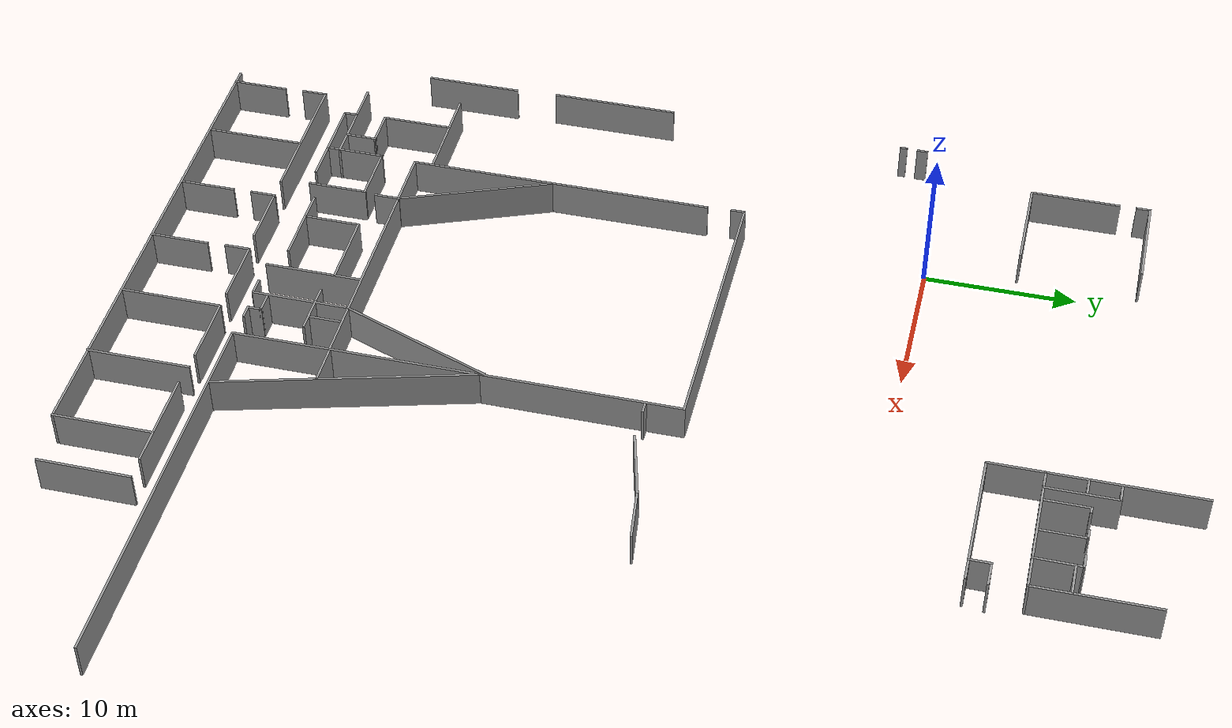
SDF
<sdf version="1.6">
 <model name="ensta_portes">
  <pose>1.28297 8.11006 0 0 -0 0</pose>
  <link name="Wall_1000">
   <collision name="Wall_1000_Collision">
    <geometry><box><size>8.5 0.15 2.5</size></box></geometry>
    <pose>0 0 1.25 0 -0 0</pose>
   </collision>
   <visual name="Wall_1000_Visual">
    <pose>0 0 1.25 0 -0 0</pose>
    <geometry><box><size>8.5 0.15 2.5</size></box></geometry>
    <material>
     <script><uri>file://media/materials/scripts/gazebo.material</uri><name>Gazebo/Grey</name></script>
     <ambient>1 1 1 1</ambient>
    </material>
    <meta><layer>0</layer></meta>
   </visual>
   <pose>-11.467 -31.6621 0 0 -0 -1.5708</pose>
  </link>
  <link name="Wall_1009">
   <collision name="Wall_1009_Collision">
    <geometry><box><size>6.39885 0.15 2.5</size></box></geometry>
    <pose>0 0 1.25 0 -0 0</pose>
   </collision>
   <visual name="Wall_1009_Visual">
    <pose>0 0 1.25 0 -0 0</pose>
    <geometry><box><size>6.39885 0.15 2.5</size></box></geometry>
    <material>
     <script><uri>file://media/materials/scripts/gazebo.material</uri><name>Gazebo/Grey</name></script>
     <ambient>1 1 1 1</ambient>
    </material>
    <meta><layer>0</layer></meta>
   </visual>
   <pose>-11.3009 -41.825 0 0 -0 -1.56909</pose>
  </link>
  <link name="Wall_1011">
   <collision name="Wall_1011_Collision">
    <geometry><box><size>6.5 0.15 2.5</size></box></geometry>
    <pose>0 0 1.25 0 -0 0</pose>
   </collision>
   <visual name="Wall_1011_Visual">
    <pose>0 0 1.25 0 -0 0</pose>
    <geometry><box><size>6.5 0.15 2.5</size></box></geometry>
    <material>
     <script><uri>file://media/materials/scripts/gazebo.material</uri><name>Gazebo/Grey</name></script>
     <ambient>1 1 1 1</ambient>
    </material>
    <meta><layer>0</layer></meta>
   </visual>
   <pose>-5.45647 -48.8577 0 0 -0 0</pose>
  </link>
  <link name="Wall_1013">
   <collision name="Wall_1013_Collision">
    <geometry><box><size>6.75 0.15 2.5</size></box></geometry>
    <pose>0 0 1.25 0 -0 0</pose>
   </collision>
   <visual name="Wall_1013_Visual">
    <pose>0 0 1.25 0 -0 0</pose>
    <geometry><box><size>6.75 0.15 2.5</size></box></geometry>
    <material>
     <script><uri>file://media/materials/scripts/gazebo.material</uri><name>Gazebo/Grey</name></script>
     <ambient>1 1 1 1</ambient>
    </material>
    <meta><layer>0</layer></meta>
   </visual>
   <pose>-5.63393 -42.2036 0 0 -0 0</pose>
  </link>
  <link name="Wall_1015">
   <collision name="Wall_1015_Collision">
    <geometry><box><size>4.75 0.15 2.5</size></box></geometry>
    <pose>0 0 1.25 0 -0 0</pose>
   </collision>
   <visual name="Wall_1015_Visual">
    <pose>0 0 1.25 0 -0 0</pose>
    <geometry><box><size>4.75 0.15 2.5</size></box></geometry>
    <material>
     <script><uri>file://media/materials/scripts/gazebo.material</uri><name>Gazebo/Grey</name></script>
     <ambient>1 1 1 1</ambient>
    </material>
    <meta><layer>0</layer></meta>
   </visual>
   <pose>-6.2723 -44.5419 0 0 -0 -1.5708</pose>
  </link>
  <link name="Wall_1016">
   <collision name="Wall_1016_Collision">
    <geometry><box><size>2.5 0.15 2.5</size></box></geometry>
    <pose>0 0 1.25 0 -0 0</pose>
   </collision>
   <visual name="Wall_1016_Visual">
    <pose>0 0 1.25 0 -0 0</pose>
    <geometry><box><size>2.5 0.15 2.5</size></box></geometry>
    <material>
     <script><uri>file://media/materials/scripts/gazebo.material</uri><name>Gazebo/Grey</name></script>
     <ambient>1 1 1 1</ambient>
    </material>
    <meta><layer>0</layer></meta>
   </visual>
   <pose>-5.0973 -46.8419 0 0 -0 0</pose>
  </link>
  <link name="Wall_1017">
   <collision name="Wall_1017_Collision">
    <geometry><box><size>2.12495 0.15 2.5</size></box></geometry>
    <pose>0 0 1.25 0 -0 0</pose>
   </collision>
   <visual name="Wall_1017_Visual">
    <pose>0 0 1.25 0 -0 0</pose>
    <geometry><box><size>2.12495 0.15 2.5</size></box></geometry>
    <material>
     <script><uri>file://media/materials/scripts/gazebo.material</uri><name>Gazebo/Grey</name></script>
     <ambient>1 1 1 1</ambient>
    </material>
    <meta><layer>0</layer></meta>
   </visual>
   <pose>-3.92825 -47.8293 0 0 -0 -1.57682</pose>
  </link>
  <link name="Wall_1019">
   <collision name="Wall_1019_Collision">
    <geometry><box><size>4 0.15 2.5</size></box></geometry>
    <pose>0 0 1.25 0 -0 0</pose>
   </collision>
   <visual name="Wall_1019_Visual">
    <pose>0 0 1.25 0 -0 0</pose>
    <geometry><box><size>4 0.15 2.5</size></box></geometry>
    <material>
     <script><uri>file://media/materials/scripts/gazebo.material</uri><name>Gazebo/Grey</name></script>
     <ambient>1 1 1 1</ambient>
    </material>
    <meta><layer>0</layer></meta>
   </visual>
   <pose>-2.29279 -47.788 0 0 -0 -1.5708</pose>
  </link>
  <link name="Wall_1020">
   <collision name="Wall_1020_Collision">
    <geometry><box><size>4 0.15 2.5</size></box></geometry>
    <pose>0 0 1.25 0 -0 0</pose>
   </collision>
   <visual name="Wall_1020_Visual">
    <pose>0 0 1.25 0 -0 0</pose>
    <geometry><box><size>4 0.15 2.5</size></box></geometry>
    <material>
     <script><uri>file://media/materials/scripts/gazebo.material</uri><name>Gazebo/Grey</name></script>
     <ambient>1 1 1 1</ambient>
    </material>
    <meta><layer>0</layer></meta>
   </visual>
   <pose>-4.21779 -49.713 0 0 -0 3.14159</pose>
  </link>
  <link name="Wall_1021">
   <collision name="Wall_1021_Collision">
    <geometry><box><size>1 0.15 2.5</size></box></geometry>
    <pose>0 0 1.25 0 -0 0</pose>
   </collision>
   <visual name="Wall_1021_Visual">
    <pose>0 0 1.25 0 -0 0</pose>
    <geometry><box><size>1 0.15 2.5</size></box></geometry>
    <material>
     <script><uri>file://media/materials/scripts/gazebo.material</uri><name>Gazebo/Grey</name></script>
     <ambient>1 1 1 1</ambient>
    </material>
    <meta><layer>0</layer></meta>
   </visual>
   <pose>-6.14279 -49.288 0 0 -0 1.5708</pose>
  </link>
  <link name="Wall_1023">
   <collision name="Wall_1023_Collision">
    <geometry><box><size>4 0.15 2.5</size></box></geometry>
    <pose>0 0 1.25 0 -0 0</pose>
   </collision>
   <visual name="Wall_1023_Visual">
    <pose>0 0 1.25 0 -0 0</pose>
    <geometry><box><size>4 0.15 2.5</size></box></geometry>
    <material>
     <script><uri>file://media/materials/scripts/gazebo.material</uri><name>Gazebo/Grey</name></script>
     <ambient>1 1 1 1</ambient>
    </material>
    <meta><layer>0</layer></meta>
   </visual>
   <pose>-0.367791 -45.863 0 0 -0 0</pose>
  </link>
  <link name="Wall_1024">
   <collision name="Wall_1024_Collision">
    <geometry><box><size>4 0.15 2.5</size></box></geometry>
    <pose>0 0 1.25 0 -0 0</pose>
   </collision>
   <visual name="Wall_1024_Visual">
    <pose>0 0 1.25 0 -0 0</pose>
    <geometry><box><size>4 0.15 2.5</size></box></geometry>
    <material>
     <script><uri>file://media/materials/scripts/gazebo.material</uri><name>Gazebo/Grey</name></script>
     <ambient>1 1 1 1</ambient>
    </material>
    <meta><layer>0</layer></meta>
   </visual>
   <pose>1.55721 -47.788 0 0 -0 -1.5708</pose>
  </link>
  <link name="Wall_1026">
   <collision name="Wall_1026_Collision">
    <geometry><box><size>2.75 0.15 2.5</size></box></geometry>
    <pose>0 0 1.25 0 -0 0</pose>
   </collision>
   <visual name="Wall_1026_Visual">
    <pose>0 0 1.25 0 -0 0</pose>
    <geometry><box><size>2.75 0.15 2.5</size></box></geometry>
    <material>
     <script><uri>file://media/materials/scripts/gazebo.material</uri><name>Gazebo/Grey</name></script>
     <ambient>1 1 1 1</ambient>
    </material>
    <meta><layer>0</layer></meta>
   </visual>
   <pose>-0.992791 -49.713 0 0 -0 0</pose>
  </link>
  <link name="Wall_1028">
   <collision name="Wall_1028_Collision">
    <geometry><box><size>20.5 0.15 2.5</size></box></geometry>
    <pose>0 0 1.25 0 -0 0</pose>
   </collision>
   <visual name="Wall_1028_Visual">
    <pose>0 0 1.25 0 -0 0</pose>
    <geometry><box><size>20.5 0.15 2.5</size></box></geometry>
    <material>
     <script><uri>file://media/materials/scripts/gazebo.material</uri><name>Gazebo/Grey</name></script>
     <ambient>1 1 1 1</ambient>
    </material>
    <meta><layer>0</layer></meta>
   </visual>
   <pose>-2.18392 -33.2842 0 0 -0 -1.5708</pose>
  </link>
  <link name="Wall_1030">
   <collision name="Wall_1030_Collision">
    <geometry><box><size>18.75 0.15 2.5</size></box></geometry>
    <pose>0 0 1.25 0 -0 0</pose>
   </collision>
   <visual name="Wall_1030_Visual">
    <pose>0 0 1.25 0 -0 0</pose>
    <geometry><box><size>18.75 0.15 2.5</size></box></geometry>
    <material>
     <script><uri>file://media/materials/scripts/gazebo.material</uri><name>Gazebo/Grey</name></script>
     <ambient>1 1 1 1</ambient>
    </material>
    <meta><layer>0</layer></meta>
   </visual>
   <pose>7.11608 -43.4592 0 0 -0 0</pose>
  </link>
  <link name="Wall_1032">
   <collision name="Wall_1032_Collision">
    <geometry><box><size>1 0.15 2.5</size></box></geometry>
    <pose>0 0 1.25 0 -0 0</pose>
   </collision>
   <visual name="Wall_1032_Visual">
    <pose>0 0 1.25 0 -0 0</pose>
    <geometry><box><size>1 0.15 2.5</size></box></geometry>
    <material>
     <script><uri>file://media/materials/scripts/gazebo.material</uri><name>Gazebo/Grey</name></script>
     <ambient>1 1 1 1</ambient>
    </material>
    <meta><layer>0</layer></meta>
   </visual>
   <pose>-2.29047 -20.9877 0 0 -0 1.5708</pose>
  </link>
  <link name="Wall_1033">
   <collision name="Wall_1033_Collision">
    <geometry><box><size>19 0.15 2.5</size></box></geometry>
    <pose>0 0 1.25 0 -0 0</pose>
   </collision>
   <visual name="Wall_1033_Visual">
    <pose>0 0 1.25 0 -0 0</pose>
    <geometry><box><size>19 0.15 2.5</size></box></geometry>
    <material>
     <script><uri>file://media/materials/scripts/gazebo.material</uri><name>Gazebo/Grey</name></script>
     <ambient>1 1 1 1</ambient>
    </material>
    <meta><layer>0</layer></meta>
   </visual>
   <pose>7.13453 -20.5627 0 0 -0 0</pose>
  </link>
  <link name="Wall_1035">
   <collision name="Wall_1035_Collision">
    <geometry><box><size>29.5 0.15 2.5</size></box></geometry>
    <pose>0 0 1.25 0 -0 0</pose>
   </collision>
   <visual name="Wall_1035_Visual">
    <pose>0 0 1.25 0 -0 0</pose>
    <geometry><box><size>29.5 0.15 2.5</size></box></geometry>
    <material>
     <script><uri>file://media/materials/scripts/gazebo.material</uri><name>Gazebo/Grey</name></script>
     <ambient>1 1 1 1</ambient>
    </material>
    <meta><layer>0</layer></meta>
   </visual>
   <pose>16.5595 -35.2377 0 0 -0 -1.5708</pose>
  </link>
  <link name="Wall_1041">
   <collision name="Wall_1041_Collision">
    <geometry><box><size>1.75 0.15 2.5</size></box></geometry>
    <pose>0 0 1.25 0 -0 0</pose>
   </collision>
   <visual name="Wall_1041_Visual">
    <pose>0 0 1.25 0 -0 0</pose>
    <geometry><box><size>1.75 0.15 2.5</size></box></geometry>
    <material>
     <script><uri>file://media/materials/scripts/gazebo.material</uri><name>Gazebo/Grey</name></script>
     <ambient>1 1 1 1</ambient>
    </material>
    <meta><layer>0</layer></meta>
   </visual>
   <pose>1.6944 -44.2524 0 0 -0 -1.5708</pose>
  </link>
  <link name="Wall_1043">
   <collision name="Wall_1043_Collision">
    <geometry><box><size>5.5 0.15 2.5</size></box></geometry>
    <pose>0 0 1.25 0 -0 0</pose>
   </collision>
   <visual name="Wall_1043_Visual">
    <pose>0 0 1.25 0 -0 0</pose>
    <geometry><box><size>5.5 0.15 2.5</size></box></geometry>
    <material>
     <script><uri>file://media/materials/scripts/gazebo.material</uri><name>Gazebo/Grey</name></script>
     <ambient>1 1 1 1</ambient>
    </material>
    <meta><layer>0</layer></meta>
   </visual>
   <pose>5.65013 -48.9641 0 0 -0 0</pose>
  </link>
  <link name="Wall_1045">
   <collision name="Wall_1045_Collision">
    <geometry><box><size>3.75 0.15 2.5</size></box></geometry>
    <pose>0 0 1.25 0 -0 0</pose>
   </collision>
   <visual name="Wall_1045_Visual">
    <pose>0 0 1.25 0 -0 0</pose>
    <geometry><box><size>3.75 0.15 2.5</size></box></geometry>
    <material>
     <script><uri>file://media/materials/scripts/gazebo.material</uri><name>Gazebo/Grey</name></script>
     <ambient>1 1 1 1</ambient>
    </material>
    <meta><layer>0</layer></meta>
   </visual>
   <pose>4.85048 -47.0727 0 0 -0 1.5708</pose>
  </link>
  <link name="Wall_1046">
   <collision name="Wall_1046_Collision">
    <geometry><box><size>5.25 0.15 2.5</size></box></geometry>
    <pose>0 0 1.25 0 -0 0</pose>
   </collision>
   <visual name="Wall_1046_Visual">
    <pose>0 0 1.25 0 -0 0</pose>
    <geometry><box><size>5.25 0.15 2.5</size></box></geometry>
    <material>
     <script><uri>file://media/materials/scripts/gazebo.material</uri><name>Gazebo/Grey</name></script>
     <ambient>1 1 1 1</ambient>
    </material>
    <meta><layer>0</layer></meta>
   </visual>
   <pose>7.40048 -45.2726 0 0 -0 0</pose>
  </link>
  <link name="Wall_1048">
   <collision name="Wall_1048_Collision">
    <geometry><box><size>6.5 0.15 2.5</size></box></geometry>
    <pose>0 0 1.25 0 -0 0</pose>
   </collision>
   <visual name="Wall_1048_Visual">
    <pose>0 0 1.25 0 -0 0</pose>
    <geometry><box><size>6.5 0.15 2.5</size></box></geometry>
    <material>
     <script><uri>file://media/materials/scripts/gazebo.material</uri><name>Gazebo/Grey</name></script>
     <ambient>1 1 1 1</ambient>
    </material>
    <meta><layer>0</layer></meta>
   </visual>
   <pose>9.95052 -46.7189 0 0 -0 -1.5708</pose>
  </link>
  <link name="Wall_1050">
   <collision name="Wall_1050_Collision">
    <geometry><box><size>1.25 0.15 2.5</size></box></geometry>
    <pose>0 0 1.25 0 -0 0</pose>
   </collision>
   <visual name="Wall_1050_Visual">
    <pose>0 0 1.25 0 -0 0</pose>
    <geometry><box><size>1.25 0.15 2.5</size></box></geometry>
    <material>
     <script><uri>file://media/materials/scripts/gazebo.material</uri><name>Gazebo/Grey</name></script>
     <ambient>1 1 1 1</ambient>
    </material>
    <meta><layer>0</layer></meta>
   </visual>
   <pose>12.1014 -49.9018 0 0 -0 0</pose>
  </link>
  <link name="Wall_1051">
   <collision name="Wall_1051_Collision">
    <geometry><box><size>6.5 0.15 2.5</size></box></geometry>
    <pose>0 0 1.25 0 -0 0</pose>
   </collision>
   <visual name="Wall_1051_Visual">
    <pose>0 0 1.25 0 -0 0</pose>
    <geometry><box><size>6.5 0.15 2.5</size></box></geometry>
    <material>
     <script><uri>file://media/materials/scripts/gazebo.material</uri><name>Gazebo/Grey</name></script>
     <ambient>1 1 1 1</ambient>
    </material>
    <meta><layer>0</layer></meta>
   </visual>
   <pose>12.6743 -46.6811 0 0 -0 1.5708</pose>
  </link>
  <link name="Wall_1053">
   <collision name="Wall_1053_Collision">
    <geometry><box><size>1.25 0.15 2.5</size></box></geometry>
    <pose>0 0 1.25 0 -0 0</pose>
   </collision>
   <visual name="Wall_1053_Visual">
    <pose>0 0 1.25 0 -0 0</pose>
    <geometry><box><size>1.25 0.15 2.5</size></box></geometry>
    <material>
     <script><uri>file://media/materials/scripts/gazebo.material</uri><name>Gazebo/Grey</name></script>
     <ambient>1 1 1 1</ambient>
    </material>
    <meta><layer>0</layer></meta>
   </visual>
   <pose>12.0455 -45.7063 0 0 -0 0</pose>
  </link>
  <link name="Wall_1055">
   <collision name="Wall_1055_Collision">
    <geometry><box><size>2.5 0.15 2.5</size></box></geometry>
    <pose>0 0 1.25 0 -0 0</pose>
   </collision>
   <visual name="Wall_1055_Visual">
    <pose>0 0 1.25 0 -0 0</pose>
    <geometry><box><size>2.5 0.15 2.5</size></box></geometry>
    <material>
     <script><uri>file://media/materials/scripts/gazebo.material</uri><name>Gazebo/Grey</name></script>
     <ambient>1 1 1 1</ambient>
    </material>
    <meta><layer>0</layer></meta>
   </visual>
   <pose>13.7705 -45.7063 0 0 -0 0</pose>
  </link>
  <link name="Wall_1057">
   <collision name="Wall_1057_Collision">
    <geometry><box><size>2.25 0.15 2.5</size></box></geometry>
    <pose>0 0 1.25 0 -0 0</pose>
   </collision>
   <visual name="Wall_1057_Visual">
    <pose>0 0 1.25 0 -0 0</pose>
    <geometry><box><size>2.25 0.15 2.5</size></box></geometry>
    <material>
     <script><uri>file://media/materials/scripts/gazebo.material</uri><name>Gazebo/Grey</name></script>
     <ambient>1 1 1 1</ambient>
    </material>
    <meta><layer>0</layer></meta>
   </visual>
   <pose>14.017 -44.6635 0 0 -0 -1.5708</pose>
  </link>
  <link name="Wall_1059">
   <collision name="Wall_1059_Collision">
    <geometry><box><size>1.5 0.15 2.5</size></box></geometry>
    <pose>0 0 1.25 0 -0 0</pose>
   </collision>
   <visual name="Wall_1059_Visual">
    <pose>0 0 1.25 0 -0 0</pose>
    <geometry><box><size>1.5 0.15 2.5</size></box></geometry>
    <material>
     <script><uri>file://media/materials/scripts/gazebo.material</uri><name>Gazebo/Grey</name></script>
     <ambient>1 1 1 1</ambient>
    </material>
    <meta><layer>0</layer></meta>
   </visual>
   <pose>13.4001 -48.8861 0 0 -0 0</pose>
  </link>
  <link name="Wall_1060">
   <collision name="Wall_1060_Collision">
    <geometry><box><size>1 0.15 2.5</size></box></geometry>
    <pose>0 0 1.25 0 -0 0</pose>
   </collision>
   <visual name="Wall_1060_Visual">
    <pose>0 0 1.25 0 -0 0</pose>
    <geometry><box><size>1 0.15 2.5</size></box></geometry>
    <material>
     <script><uri>file://media/materials/scripts/gazebo.material</uri><name>Gazebo/Grey</name></script>
     <ambient>1 1 1 1</ambient>
    </material>
    <meta><layer>0</layer></meta>
   </visual>
   <pose>14.0751 -49.3111 0 0 -0 -1.5708</pose>
  </link>
  <link name="Wall_1061">
   <collision name="Wall_1061_Collision">
    <geometry><box><size>1 0.15 2.5</size></box></geometry>
    <pose>0 0 1.25 0 -0 0</pose>
   </collision>
   <visual name="Wall_1061_Visual">
    <pose>0 0 1.25 0 -0 0</pose>
    <geometry><box><size>1 0.15 2.5</size></box></geometry>
    <material>
     <script><uri>file://media/materials/scripts/gazebo.material</uri><name>Gazebo/Grey</name></script>
     <ambient>1 1 1 1</ambient>
    </material>
    <meta><layer>0</layer></meta>
   </visual>
   <pose>14.5001 -49.7361 0 0 -0 0</pose>
  </link>
  <link name="Wall_1065">
   <collision name="Wall_1065_Collision">
    <geometry><box><size>26.25 0.15 2.5</size></box></geometry>
    <pose>0 0 1.25 0 -0 0</pose>
   </collision>
   <visual name="Wall_1065_Visual">
    <pose>0 0 1.25 0 -0 0</pose>
    <geometry><box><size>26.25 0.15 2.5</size></box></geometry>
    <material>
     <script><uri>file://media/materials/scripts/gazebo.material</uri><name>Gazebo/Grey</name></script>
     <ambient>1 1 1 1</ambient>
    </material>
    <meta><layer>0</layer></meta>
   </visual>
   <pose>29.6095 -49.9127 0 0 -0 0</pose>
  </link>
  <link name="Wall_1069">
   <collision name="Wall_1069_Collision">
    <geometry><box><size>2.75 0.15 2.5</size></box></geometry>
    <pose>0 0 1.25 0 -0 0</pose>
   </collision>
   <visual name="Wall_1069_Visual">
    <pose>0 0 1.25 0 -0 0</pose>
    <geometry><box><size>2.75 0.15 2.5</size></box></geometry>
    <material>
     <script><uri>file://media/materials/scripts/gazebo.material</uri><name>Gazebo/Grey</name></script>
     <ambient>1 1 1 1</ambient>
    </material>
    <meta><layer>0</layer></meta>
   </visual>
   <pose>17.9335 -43.4273 0 0 -0 0</pose>
  </link>
  <link name="Wall_1071">
   <collision name="Wall_1071_Collision">
    <geometry><box><size>0.75 0.15 2.5</size></box></geometry>
    <pose>0 0 1.25 0 -0 0</pose>
   </collision>
   <visual name="Wall_1071_Visual">
    <pose>0 0 1.25 0 -0 0</pose>
    <geometry><box><size>0.75 0.15 2.5</size></box></geometry>
    <material>
     <script><uri>file://media/materials/scripts/gazebo.material</uri><name>Gazebo/Grey</name></script>
     <ambient>1 1 1 1</ambient>
    </material>
    <meta><layer>0</layer></meta>
   </visual>
   <pose>16.9945 -23.01 0 0 -0 0</pose>
  </link>
  <link name="Wall_1073">
   <collision name="Wall_1073_Collision">
    <geometry><box><size>4.75 0.15 2.5</size></box></geometry>
    <pose>0 0 1.25 0 -0 0</pose>
   </collision>
   <visual name="Wall_1073_Visual">
    <pose>0 0 1.25 0 -0 0</pose>
    <geometry><box><size>4.75 0.15 2.5</size></box></geometry>
    <material>
     <script><uri>file://media/materials/scripts/gazebo.material</uri><name>Gazebo/Grey</name></script>
     <ambient>1 1 1 1</ambient>
    </material>
    <meta><layer>0</layer></meta>
   </visual>
   <pose>21.7406 -22.4147 0 0 -0 0.261799</pose>
  </link>
  <link name="Wall_1074">
   <collision name="Wall_1074_Collision">
    <geometry><box><size>3.57956 0.15 2.5</size></box></geometry>
    <pose>0 0 1.25 0 -0 0</pose>
   </collision>
   <visual name="Wall_1074_Visual">
    <pose>0 0 1.25 0 -0 0</pose>
    <geometry><box><size>3.57956 0.15 2.5</size></box></geometry>
    <material>
     <script><uri>file://media/materials/scripts/gazebo.material</uri><name>Gazebo/Grey</name></script>
     <ambient>1 1 1 1</ambient>
    </material>
    <meta><layer>0</layer></meta>
   </visual>
   <pose>25.6634 -21.604 0 0 -0 0.125966</pose>
  </link>
  <link name="Wall_1086">
   <collision name="Wall_1086_Collision">
    <geometry><box><size>10.507 0.15 2.5</size></box></geometry>
    <pose>0 0 1.25 0 -0 0</pose>
   </collision>
   <visual name="Wall_1086_Visual">
    <pose>0 0 1.25 0 -0 0</pose>
    <geometry><box><size>10.507 0.15 2.5</size></box></geometry>
    <material>
     <script><uri>file://media/materials/scripts/gazebo.material</uri><name>Gazebo/Grey</name></script>
     <ambient>1 1 1 1</ambient>
    </material>
    <meta><layer>0</layer></meta>
   </visual>
   <pose>-0.211633 -38.6487 0 0 -0 -1.19081</pose>
  </link>
  <link name="Wall_1088">
   <collision name="Wall_1088_Collision">
    <geometry><box><size>10.9933 0.15 2.5</size></box></geometry>
    <pose>0 0 1.25 0 -0 0</pose>
   </collision>
   <visual name="Wall_1088_Visual">
    <pose>0 0 1.25 0 -0 0</pose>
    <geometry><box><size>10.9933 0.15 2.5</size></box></geometry>
    <material>
     <script><uri>file://media/materials/scripts/gazebo.material</uri><name>Gazebo/Grey</name></script>
     <ambient>1 1 1 1</ambient>
    </material>
    <meta><layer>0</layer></meta>
   </visual>
   <pose>14.5776 -38.4295 0 0 -0 1.2121</pose>
  </link>
  <link name="Wall_1091">
   <collision name="Wall_1091_Collision">
    <geometry><box><size>17.2145 0.15 2.5</size></box></geometry>
    <pose>0 0 1.25 0 -0 0</pose>
   </collision>
   <visual name="Wall_1091_Visual">
    <pose>0 0 1.25 0 -0 0</pose>
    <geometry><box><size>17.2145 0.15 2.5</size></box></geometry>
    <material>
     <script><uri>file://media/materials/scripts/gazebo.material</uri><name>Gazebo/Grey</name></script>
     <ambient>1 1 1 1</ambient>
    </material>
    <meta><layer>0</layer></meta>
   </visual>
   <pose>18.7605 -41.575 0 0 -0 -1.30033</pose>
  </link>
  <link name="Wall_173">
   <collision name="Wall_173_Collision">
    <geometry><box><size>8 0.15 2.5</size></box></geometry>
    <pose>0 0 1.25 0 -0 0</pose>
   </collision>
   <visual name="Wall_173_Visual">
    <pose>0 0 1.25 0 -0 0</pose>
    <geometry><box><size>8 0.15 2.5</size></box></geometry>
    <material>
     <script><uri>file://media/materials/scripts/gazebo.material</uri><name>Gazebo/Grey</name></script>
     <ambient>1 1 1 1</ambient>
    </material>
    <meta><layer>0</layer></meta>
   </visual>
   <pose>25.833 5.62759 0 0 -0 -1.5708</pose>
  </link>
  <link name="Wall_174">
   <collision name="Wall_174_Collision">
    <geometry><box><size>9.25 0.15 2.5</size></box></geometry>
    <pose>0 0 1.25 0 -0 0</pose>
   </collision>
   <visual name="Wall_174_Visual">
    <pose>0 0 1.25 0 -0 0</pose>
    <geometry><box><size>9.25 0.15 2.5</size></box></geometry>
    <material>
     <script><uri>file://media/materials/scripts/gazebo.material</uri><name>Gazebo/Grey</name></script>
     <ambient>1 1 1 1</ambient>
    </material>
    <meta><layer>0</layer></meta>
   </visual>
   <pose>21.283 1.70259 0 0 -0 3.14159</pose>
  </link>
  <link name="Wall_175">
   <collision name="Wall_175_Collision">
    <geometry><box><size>10 0.15 2.5</size></box></geometry>
    <pose>0 0 1.25 0 -0 0</pose>
   </collision>
   <visual name="Wall_175_Visual">
    <pose>0 0 1.25 0 -0 0</pose>
    <geometry><box><size>10 0.15 2.5</size></box></geometry>
    <material>
     <script><uri>file://media/materials/scripts/gazebo.material</uri><name>Gazebo/Grey</name></script>
     <ambient>1 1 1 1</ambient>
    </material>
    <meta><layer>0</layer></meta>
   </visual>
   <pose>16.733 6.62759 0 0 -0 1.5708</pose>
  </link>
  <link name="Wall_177">
   <collision name="Wall_177_Collision">
    <geometry><box><size>3.75 0.15 2.5</size></box></geometry>
    <pose>0 0 1.25 0 -0 0</pose>
   </collision>
   <visual name="Wall_177_Visual">
    <pose>0 0 1.25 0 -0 0</pose>
    <geometry><box><size>3.75 0.15 2.5</size></box></geometry>
    <material>
     <script><uri>file://media/materials/scripts/gazebo.material</uri><name>Gazebo/Grey</name></script>
     <ambient>1 1 1 1</ambient>
    </material>
    <meta><layer>0</layer></meta>
   </visual>
   <pose>16.733 -0.097408 0 0 -0 -1.5708</pose>
  </link>
  <link name="Wall_178">
   <collision name="Wall_178_Collision">
    <geometry><box><size>9.5 0.15 2.5</size></box></geometry>
    <pose>0 0 1.25 0 -0 0</pose>
   </collision>
   <visual name="Wall_178_Visual">
    <pose>0 0 1.25 0 -0 0</pose>
    <geometry><box><size>9.5 0.15 2.5</size></box></geometry>
    <material>
     <script><uri>file://media/materials/scripts/gazebo.material</uri><name>Gazebo/Grey</name></script>
     <ambient>1 1 1 1</ambient>
    </material>
    <meta><layer>0</layer></meta>
   </visual>
   <pose>21.408 -1.89741 0 0 -0 0</pose>
  </link>
  <link name="Wall_180">
   <collision name="Wall_180_Collision">
    <geometry><box><size>1.5 0.15 2.5</size></box></geometry>
    <pose>0 0 1.25 0 -0 0</pose>
   </collision>
   <visual name="Wall_180_Visual">
    <pose>0 0 1.25 0 -0 0</pose>
    <geometry><box><size>1.5 0.15 2.5</size></box></geometry>
    <material>
     <script><uri>file://media/materials/scripts/gazebo.material</uri><name>Gazebo/Grey</name></script>
     <ambient>1 1 1 1</ambient>
    </material>
    <meta><layer>0</layer></meta>
   </visual>
   <pose>24.6406 -1.22813 0 0 -0 1.5708</pose>
  </link>
  <link name="Wall_181">
   <collision name="Wall_181_Collision">
    <geometry><box><size>1.75 0.15 2.5</size></box></geometry>
    <pose>0 0 1.25 0 -0 0</pose>
   </collision>
   <visual name="Wall_181_Visual">
    <pose>0 0 1.25 0 -0 0</pose>
    <geometry><box><size>1.75 0.15 2.5</size></box></geometry>
    <material>
     <script><uri>file://media/materials/scripts/gazebo.material</uri><name>Gazebo/Grey</name></script>
     <ambient>1 1 1 1</ambient>
    </material>
    <meta><layer>0</layer></meta>
   </visual>
   <pose>25.4406 -0.553135 0 0 -0 0</pose>
  </link>
  <link name="Wall_183">
   <collision name="Wall_183_Collision">
    <geometry><box><size>1.25 0.15 2.5</size></box></geometry>
    <pose>0 0 1.25 0 -0 0</pose>
   </collision>
   <visual name="Wall_183_Visual">
    <pose>0 0 1.25 0 -0 0</pose>
    <geometry><box><size>1.25 0.15 2.5</size></box></geometry>
    <material>
     <script><uri>file://media/materials/scripts/gazebo.material</uri><name>Gazebo/Grey</name></script>
     <ambient>1 1 1 1</ambient>
    </material>
    <meta><layer>0</layer></meta>
   </visual>
   <pose>17.4122 6.31067 0 0 -0 0</pose>
  </link>
  <link name="Wall_184">
   <collision name="Wall_184_Collision">
    <geometry><box><size>4.75 0.15 2.5</size></box></geometry>
    <pose>0 0 1.25 0 -0 0</pose>
   </collision>
   <visual name="Wall_184_Visual">
    <pose>0 0 1.25 0 -0 0</pose>
    <geometry><box><size>4.75 0.15 2.5</size></box></geometry>
    <material>
     <script><uri>file://media/materials/scripts/gazebo.material</uri><name>Gazebo/Grey</name></script>
     <ambient>1 1 1 1</ambient>
    </material>
    <meta><layer>0</layer></meta>
   </visual>
   <pose>17.9622 4.01067 0 0 -0 -1.5708</pose>
  </link>
  <link name="Wall_186">
   <collision name="Wall_186_Collision">
    <geometry><box><size>1.25 0.15 2.5</size></box></geometry>
    <pose>0 0 1.25 0 -0 0</pose>
   </collision>
   <visual name="Wall_186_Visual">
    <pose>0 0 1.25 0 -0 0</pose>
    <geometry><box><size>1.25 0.15 2.5</size></box></geometry>
    <material>
     <script><uri>file://media/materials/scripts/gazebo.material</uri><name>Gazebo/Grey</name></script>
     <ambient>1 1 1 1</ambient>
    </material>
    <meta><layer>0</layer></meta>
   </visual>
   <pose>17.3064 4.30055 0 0 -0 0</pose>
  </link>
  <link name="Wall_195">
   <collision name="Wall_195_Collision">
    <geometry><box><size>3 0.15 2.5</size></box></geometry>
    <pose>0 0 1.25 0 -0 0</pose>
   </collision>
   <visual name="Wall_195_Visual">
    <pose>0 0 1.25 0 -0 0</pose>
    <geometry><box><size>3 0.15 2.5</size></box></geometry>
    <material>
     <script><uri>file://media/materials/scripts/gazebo.material</uri><name>Gazebo/Grey</name></script>
     <ambient>1 1 1 1</ambient>
    </material>
    <meta><layer>0</layer></meta>
   </visual>
   <pose>18.978 3.2556 0 0 -0 -1.5708</pose>
  </link>
  <link name="Wall_197">
   <collision name="Wall_197_Collision">
    <geometry><box><size>0.5 0.15 2.5</size></box></geometry>
    <pose>0 0 1.25 0 -0 0</pose>
   </collision>
   <visual name="Wall_197_Visual">
    <pose>0 0 1.25 0 -0 0</pose>
    <geometry><box><size>0.5 0.15 2.5</size></box></geometry>
    <material>
     <script><uri>file://media/materials/scripts/gazebo.material</uri><name>Gazebo/Grey</name></script>
     <ambient>1 1 1 1</ambient>
    </material>
    <meta><layer>0</layer></meta>
   </visual>
   <pose>19.153 4.6806 0 0 -0 0</pose>
  </link>
  <link name="Wall_199">
   <collision name="Wall_199_Collision">
    <geometry><box><size>0.75 0.15 2.5</size></box></geometry>
    <pose>0 0 1.25 0 -0 0</pose>
   </collision>
   <visual name="Wall_199_Visual">
    <pose>0 0 1.25 0 -0 0</pose>
    <geometry><box><size>0.75 0.15 2.5</size></box></geometry>
    <material>
     <script><uri>file://media/materials/scripts/gazebo.material</uri><name>Gazebo/Grey</name></script>
     <ambient>1 1 1 1</ambient>
    </material>
    <meta><layer>0</layer></meta>
   </visual>
   <pose>21.1036 4.70562 0 0 -0 0</pose>
  </link>
  <link name="Wall_201">
   <collision name="Wall_201_Collision">
    <geometry><box><size>3 0.15 2.5</size></box></geometry>
    <pose>0 0 1.25 0 -0 0</pose>
   </collision>
   <visual name="Wall_201_Visual">
    <pose>0 0 1.25 0 -0 0</pose>
    <geometry><box><size>3 0.15 2.5</size></box></geometry>
    <material>
     <script><uri>file://media/materials/scripts/gazebo.material</uri><name>Gazebo/Grey</name></script>
     <ambient>1 1 1 1</ambient>
    </material>
    <meta><layer>0</layer></meta>
   </visual>
   <pose>21.4036 3.28062 0 0 -0 -1.5708</pose>
  </link>
  <link name="Wall_203">
   <collision name="Wall_203_Collision">
    <geometry><box><size>1 0.15 2.5</size></box></geometry>
    <pose>0 0 1.25 0 -0 0</pose>
   </collision>
   <visual name="Wall_203_Visual">
    <pose>0 0 1.25 0 -0 0</pose>
    <geometry><box><size>1 0.15 2.5</size></box></geometry>
    <material>
     <script><uri>file://media/materials/scripts/gazebo.material</uri><name>Gazebo/Grey</name></script>
     <ambient>1 1 1 1</ambient>
    </material>
    <meta><layer>0</layer></meta>
   </visual>
   <pose>23.2372 4.71557 0 0 -0 0</pose>
  </link>
  <link name="Wall_204">
   <collision name="Wall_204_Collision">
    <geometry><box><size>3.16277 0.15 2.5</size></box></geometry>
    <pose>0 0 1.25 0 -0 0</pose>
   </collision>
   <visual name="Wall_204_Visual">
    <pose>0 0 1.25 0 -0 0</pose>
    <geometry><box><size>3.16277 0.15 2.5</size></box></geometry>
    <material>
     <script><uri>file://media/materials/scripts/gazebo.material</uri><name>Gazebo/Grey</name></script>
     <ambient>1 1 1 1</ambient>
    </material>
    <meta><layer>0</layer></meta>
   </visual>
   <pose>23.6529 3.20921 0 0 -0 -1.577</pose>
  </link>
  <link name="Wall_206">
   <collision name="Wall_206_Collision">
    <geometry><box><size>2.25 0.15 2.5</size></box></geometry>
    <pose>0 0 1.25 0 -0 0</pose>
   </collision>
   <visual name="Wall_206_Visual">
    <pose>0 0 1.25 0 -0 0</pose>
    <geometry><box><size>2.25 0.15 2.5</size></box></geometry>
    <material>
     <script><uri>file://media/materials/scripts/gazebo.material</uri><name>Gazebo/Grey</name></script>
     <ambient>1 1 1 1</ambient>
    </material>
    <meta><layer>0</layer></meta>
   </visual>
   <pose>24.7624 4.23426 0 0 -0 0</pose>
  </link>
  <link name="Wall_355">
   <collision name="Wall_355_Collision">
    <geometry><box><size>6.5 0.15 2.5</size></box></geometry>
    <pose>0 0 1.25 0 -0 0</pose>
   </collision>
   <visual name="Wall_355_Visual">
    <pose>0 0 1.25 0 -0 0</pose>
    <geometry><box><size>6.5 0.15 2.5</size></box></geometry>
    <material>
     <script><uri>file://media/materials/scripts/gazebo.material</uri><name>Gazebo/Grey</name></script>
     <ambient>1 1 1 1</ambient>
    </material>
    <meta><layer>0</layer></meta>
   </visual>
   <pose>-5.51521 -2.10177 0 0 -0 3.14159</pose>
  </link>
  <link name="Wall_356">
   <collision name="Wall_356_Collision">
    <geometry><box><size>6 0.15 2.5</size></box></geometry>
    <pose>0 0 1.25 0 -0 0</pose>
   </collision>
   <visual name="Wall_356_Visual">
    <pose>0 0 1.25 0 -0 0</pose>
    <geometry><box><size>6 0.15 2.5</size></box></geometry>
    <material>
     <script><uri>file://media/materials/scripts/gazebo.material</uri><name>Gazebo/Grey</name></script>
     <ambient>1 1 1 1</ambient>
    </material>
    <meta><layer>0</layer></meta>
   </visual>
   <pose>-8.69021 0.823234 0 0 -0 1.5708</pose>
  </link>
  <link name="Wall_358">
   <collision name="Wall_358_Collision">
    <geometry><box><size>1 0.15 2.5</size></box></geometry>
    <pose>0 0 1.25 0 -0 0</pose>
   </collision>
   <visual name="Wall_358_Visual">
    <pose>0 0 1.25 0 -0 0</pose>
    <geometry><box><size>1 0.15 2.5</size></box></geometry>
    <material>
     <script><uri>file://media/materials/scripts/gazebo.material</uri><name>Gazebo/Grey</name></script>
     <ambient>1 1 1 1</ambient>
    </material>
    <meta><layer>0</layer></meta>
   </visual>
   <pose>-8.701 5.37009 0 0 -0 1.5708</pose>
  </link>
  <link name="Wall_359">
   <collision name="Wall_359_Collision">
    <geometry><box><size>6.5 0.15 2.5</size></box></geometry>
    <pose>0 0 1.25 0 -0 0</pose>
   </collision>
   <visual name="Wall_359_Visual">
    <pose>0 0 1.25 0 -0 0</pose>
    <geometry><box><size>6.5 0.15 2.5</size></box></geometry>
    <material>
     <script><uri>file://media/materials/scripts/gazebo.material</uri><name>Gazebo/Grey</name></script>
     <ambient>1 1 1 1</ambient>
    </material>
    <meta><layer>0</layer></meta>
   </visual>
   <pose>-5.526 5.79509 0 0 -0 0</pose>
  </link>
  <link name="Wall_383">
   <collision name="Wall_383_Collision">
    <geometry><box><size>0.5 0.15 2.5</size></box></geometry>
    <pose>0 0 1.25 0 -0 0</pose>
   </collision>
   <visual name="Wall_383_Visual">
    <pose>0 0 1.25 0 -0 0</pose>
    <geometry><box><size>0.5 0.15 2.5</size></box></geometry>
    <material>
     <script><uri>file://media/materials/scripts/gazebo.material</uri><name>Gazebo/Grey</name></script>
     <ambient>1 1 1 1</ambient>
    </material>
    <meta><layer>0</layer></meta>
   </visual>
   <pose>-11.3312 -11.2041 0 0 -0 1.5708</pose>
  </link>
  <link name="Wall_390">
   <collision name="Wall_390_Collision">
    <geometry><box><size>0.75 0.15 2.5</size></box></geometry>
    <pose>0 0 1.25 0 -0 0</pose>
   </collision>
   <visual name="Wall_390_Visual">
    <pose>0 0 1.25 0 -0 0</pose>
    <geometry><box><size>0.75 0.15 2.5</size></box></geometry>
    <material>
     <script><uri>file://media/materials/scripts/gazebo.material</uri><name>Gazebo/Grey</name></script>
     <ambient>1 1 1 1</ambient>
    </material>
    <meta><layer>0</layer></meta>
   </visual>
   <pose>-11.3002 -9.91014 0 0 -0 -1.5708</pose>
  </link>
  <link name="Wall_789">
   <collision name="Wall_789_Collision">
    <geometry><box><size>34.7387 0.15 2.5</size></box></geometry>
    <pose>0 0 1.25 0 -0 0</pose>
   </collision>
   <visual name="Wall_789_Visual">
    <pose>0 0 1.25 0 -0 0</pose>
    <geometry><box><size>34.7387 0.15 2.5</size></box></geometry>
    <material>
     <script><uri>file://media/materials/scripts/gazebo.material</uri><name>Gazebo/Grey</name></script>
     <ambient>1 1 1 1</ambient>
    </material>
    <meta><layer>0</layer></meta>
   </visual>
   <pose>8.67776 -58.2572 0 0 -0 0.001644</pose>
  </link>
  <link name="Wall_863">
   <collision name="Wall_863_Collision">
    <geometry><box><size>3.75 0.15 2.5</size></box></geometry>
    <pose>0 0 1.25 0 -0 0</pose>
   </collision>
   <visual name="Wall_863_Visual">
    <pose>0 0 1.25 0 -0 0</pose>
    <geometry><box><size>3.75 0.15 2.5</size></box></geometry>
    <material>
     <script><uri>file://media/materials/scripts/gazebo.material</uri><name>Gazebo/Grey</name></script>
     <ambient>1 1 1 1</ambient>
    </material>
    <meta><layer>0</layer></meta>
   </visual>
   <pose>-7.71516 -56.4593 0 0 -0 1.5708</pose>
  </link>
  <link name="Wall_865">
   <collision name="Wall_865_Collision">
    <geometry><box><size>1.75 0.15 2.5</size></box></geometry>
    <pose>0 0 1.25 0 -0 0</pose>
   </collision>
   <visual name="Wall_865_Visual">
    <pose>0 0 1.25 0 -0 0</pose>
    <geometry><box><size>1.75 0.15 2.5</size></box></geometry>
    <material>
     <script><uri>file://media/materials/scripts/gazebo.material</uri><name>Gazebo/Grey</name></script>
     <ambient>1 1 1 1</ambient>
    </material>
    <meta><layer>0</layer></meta>
   </visual>
   <pose>-7.79516 -52.4993 0 0 -0 1.5708</pose>
  </link>
  <link name="Wall_866">
   <collision name="Wall_866_Collision">
    <geometry><box><size>9.75 0.15 2.5</size></box></geometry>
    <pose>0 0 1.25 0 -0 0</pose>
   </collision>
   <visual name="Wall_866_Visual">
    <pose>0 0 1.25 0 -0 0</pose>
    <geometry><box><size>9.75 0.15 2.5</size></box></geometry>
    <material>
     <script><uri>file://media/materials/scripts/gazebo.material</uri><name>Gazebo/Grey</name></script>
     <ambient>1 1 1 1</ambient>
    </material>
    <meta><layer>0</layer></meta>
   </visual>
   <pose>-2.99516 -51.6993 0 0 -0 0</pose>
  </link>
  <link name="Wall_868">
   <collision name="Wall_868_Collision">
    <geometry><box><size>6.5 0.15 2.5</size></box></geometry>
    <pose>0 0 1.25 0 -0 0</pose>
   </collision>
   <visual name="Wall_868_Visual">
    <pose>0 0 1.25 0 -0 0</pose>
    <geometry><box><size>6.5 0.15 2.5</size></box></geometry>
    <material>
     <script><uri>file://media/materials/scripts/gazebo.material</uri><name>Gazebo/Grey</name></script>
     <ambient>1 1 1 1</ambient>
    </material>
    <meta><layer>0</layer></meta>
   </visual>
   <pose>-2.27516 -54.9543 0 0 -0 -1.5708</pose>
  </link>
  <link name="Wall_870">
   <collision name="Wall_870_Collision">
    <geometry><box><size>1.75 0.15 2.5</size></box></geometry>
    <pose>0 0 1.25 0 -0 0</pose>
   </collision>
   <visual name="Wall_870_Visual">
    <pose>0 0 1.25 0 -0 0</pose>
    <geometry><box><size>1.75 0.15 2.5</size></box></geometry>
    <material>
     <script><uri>file://media/materials/scripts/gazebo.material</uri><name>Gazebo/Grey</name></script>
     <ambient>1 1 1 1</ambient>
    </material>
    <meta><layer>0</layer></meta>
   </visual>
   <pose>3.32484 -52.4593 0 0 -0 -1.5708</pose>
  </link>
  <link name="Wall_872">
   <collision name="Wall_872_Collision">
    <geometry><box><size>3.75 0.15 2.5</size></box></geometry>
    <pose>0 0 1.25 0 -0 0</pose>
   </collision>
   <visual name="Wall_872_Visual">
    <pose>0 0 1.25 0 -0 0</pose>
    <geometry><box><size>3.75 0.15 2.5</size></box></geometry>
    <material>
     <script><uri>file://media/materials/scripts/gazebo.material</uri><name>Gazebo/Grey</name></script>
     <ambient>1 1 1 1</ambient>
    </material>
    <meta><layer>0</layer></meta>
   </visual>
   <pose>3.36484 -56.3793 0 0 -0 -1.5708</pose>
  </link>
  <link name="Wall_874">
   <collision name="Wall_874_Collision">
    <geometry><box><size>4.25 0.15 2.5</size></box></geometry>
    <pose>0 0 1.25 0 -0 0</pose>
   </collision>
   <visual name="Wall_874_Visual">
    <pose>0 0 1.25 0 -0 0</pose>
    <geometry><box><size>4.25 0.15 2.5</size></box></geometry>
    <material>
     <script><uri>file://media/materials/scripts/gazebo.material</uri><name>Gazebo/Grey</name></script>
     <ambient>1 1 1 1</ambient>
    </material>
    <meta><layer>0</layer></meta>
   </visual>
   <pose>5.37484 -51.6593 0 0 -0 0</pose>
  </link>
  <link name="Wall_876">
   <collision name="Wall_876_Collision">
    <geometry><box><size>1.75 0.15 2.5</size></box></geometry>
    <pose>0 0 1.25 0 -0 0</pose>
   </collision>
   <visual name="Wall_876_Visual">
    <pose>0 0 1.25 0 -0 0</pose>
    <geometry><box><size>1.75 0.15 2.5</size></box></geometry>
    <material>
     <script><uri>file://media/materials/scripts/gazebo.material</uri><name>Gazebo/Grey</name></script>
     <ambient>1 1 1 1</ambient>
    </material>
    <meta><layer>0</layer></meta>
   </visual>
   <pose>8.80484 -52.3293 0 0 -0 -1.5708</pose>
  </link>
  <link name="Wall_878">
   <collision name="Wall_878_Collision">
    <geometry><box><size>4 0.15 2.5</size></box></geometry>
    <pose>0 0 1.25 0 -0 0</pose>
   </collision>
   <visual name="Wall_878_Visual">
    <pose>0 0 1.25 0 -0 0</pose>
    <geometry><box><size>4 0.15 2.5</size></box></geometry>
    <material>
     <script><uri>file://media/materials/scripts/gazebo.material</uri><name>Gazebo/Grey</name></script>
     <ambient>1 1 1 1</ambient>
    </material>
    <meta><layer>0</layer></meta>
   </visual>
   <pose>8.8837 -56.3594 0 0 -0 -1.5708</pose>
  </link>
  <link name="Wall_880">
   <collision name="Wall_880_Collision">
    <geometry><box><size>4.5 0.15 2.5</size></box></geometry>
    <pose>0 0 1.25 0 -0 0</pose>
   </collision>
   <visual name="Wall_880_Visual">
    <pose>0 0 1.25 0 -0 0</pose>
    <geometry><box><size>4.5 0.15 2.5</size></box></geometry>
    <material>
     <script><uri>file://media/materials/scripts/gazebo.material</uri><name>Gazebo/Grey</name></script>
     <ambient>1 1 1 1</ambient>
    </material>
    <meta><layer>0</layer></meta>
   </visual>
   <pose>10.9798 -51.5293 0 0 -0 0</pose>
  </link>
  <link name="Wall_882">
   <collision name="Wall_882_Collision">
    <geometry><box><size>6.75 0.15 2.5</size></box></geometry>
    <pose>0 0 1.25 0 -0 0</pose>
   </collision>
   <visual name="Wall_882_Visual">
    <pose>0 0 1.25 0 -0 0</pose>
    <geometry><box><size>6.75 0.15 2.5</size></box></geometry>
    <material>
     <script><uri>file://media/materials/scripts/gazebo.material</uri><name>Gazebo/Grey</name></script>
     <ambient>1 1 1 1</ambient>
    </material>
    <meta><layer>0</layer></meta>
   </visual>
   <pose>14.3805 -54.8329 0 0 -0 -1.5708</pose>
  </link>
  <link name="Wall_884">
   <collision name="Wall_884_Collision">
    <geometry><box><size>4.75 0.15 2.5</size></box></geometry>
    <pose>0 0 1.25 0 -0 0</pose>
   </collision>
   <visual name="Wall_884_Visual">
    <pose>0 0 1.25 0 -0 0</pose>
    <geometry><box><size>4.75 0.15 2.5</size></box></geometry>
    <material>
     <script><uri>file://media/materials/scripts/gazebo.material</uri><name>Gazebo/Grey</name></script>
     <ambient>1 1 1 1</ambient>
    </material>
    <meta><layer>0</layer></meta>
   </visual>
   <pose>16.6805 -51.5329 0 0 -0 0</pose>
  </link>
  <link name="Wall_886">
   <collision name="Wall_886_Collision">
    <geometry><box><size>6.88755 0.15 2.5</size></box></geometry>
    <pose>0 0 1.25 0 -0 0</pose>
   </collision>
   <visual name="Wall_886_Visual">
    <pose>0 0 1.25 0 -0 0</pose>
    <geometry><box><size>6.88755 0.15 2.5</size></box></geometry>
    <material>
     <script><uri>file://media/materials/scripts/gazebo.material</uri><name>Gazebo/Grey</name></script>
     <ambient>1 1 1 1</ambient>
    </material>
    <meta><layer>0</layer></meta>
   </visual>
   <pose>20.114 -54.9174 0 0 -0 -1.56848</pose>
  </link>
  <link name="Wall_888">
   <collision name="Wall_888_Collision">
    <geometry><box><size>6.75 0.15 2.5</size></box></geometry>
    <pose>0 0 1.25 0 -0 0</pose>
   </collision>
   <visual name="Wall_888_Visual">
    <pose>0 0 1.25 0 -0 0</pose>
    <geometry><box><size>6.75 0.15 2.5</size></box></geometry>
    <material>
     <script><uri>file://media/materials/scripts/gazebo.material</uri><name>Gazebo/Grey</name></script>
     <ambient>1 1 1 1</ambient>
    </material>
    <meta><layer>0</layer></meta>
   </visual>
   <pose>24.8882 -51.6798 0 0 -0 0</pose>
  </link>
  <link name="Wall_890">
   <collision name="Wall_890_Collision">
    <geometry><box><size>6.69753 0.15 2.5</size></box></geometry>
    <pose>0 0 1.25 0 -0 0</pose>
   </collision>
   <visual name="Wall_890_Visual">
    <pose>0 0 1.25 0 -0 0</pose>
    <geometry><box><size>6.69753 0.15 2.5</size></box></geometry>
    <material>
     <script><uri>file://media/materials/scripts/gazebo.material</uri><name>Gazebo/Grey</name></script>
     <ambient>1 1 1 1</ambient>
    </material>
    <meta><layer>0</layer></meta>
   </visual>
   <pose>25.9603 -54.955 0 0 -0 -1.57066</pose>
  </link>
  <link name="Wall_892">
   <collision name="Wall_892_Collision">
    <geometry><box><size>6.19794 0.15 2.5</size></box></geometry>
    <pose>0 0 1.25 0 -0 0</pose>
   </collision>
   <visual name="Wall_892_Visual">
    <pose>0 0 1.25 0 -0 0</pose>
    <geometry><box><size>6.19794 0.15 2.5</size></box></geometry>
    <material>
     <script><uri>file://media/materials/scripts/gazebo.material</uri><name>Gazebo/Grey</name></script>
     <ambient>1 1 1 1</ambient>
    </material>
    <meta><layer>0</layer></meta>
   </visual>
   <pose>29.7153 -54.6924 0 0 -0 -1.57548</pose>
  </link>
  <static>1</static>
 </model>
</sdf>
